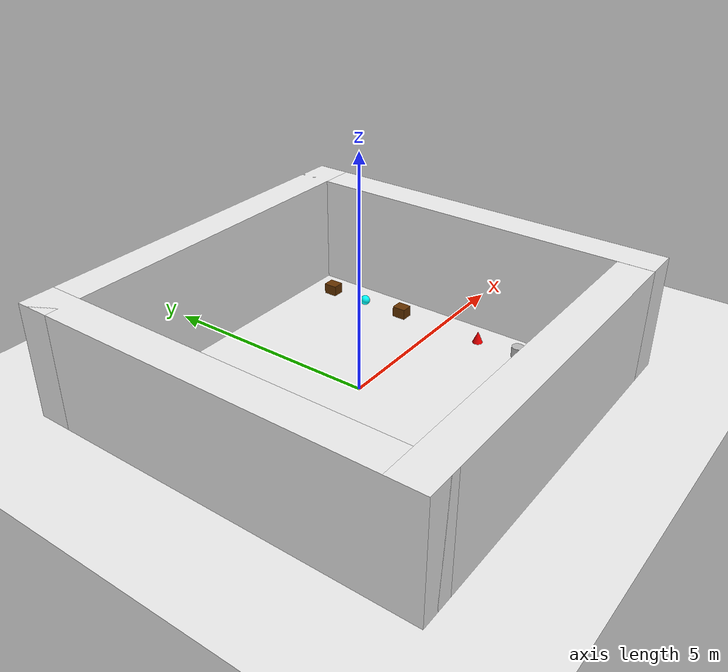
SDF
<sdf version="1.6">
 <world name="default">
  <light name="sun" type="directional">
   <pose>0 0 10 0 -0 0</pose>
   <diffuse>0.8 0.8 0.8 1</diffuse>
   <specular>0.2 0.2 0.2 1</specular>
   <attenuation>
    <range>1000</range>
    <constant>0.9</constant>
    <linear>0.01</linear>
    <quadratic>0.001</quadratic>
   </attenuation>
   <direction>-0.5 0.1 -0.9</direction>
  </light>
  <light name="sun" type="directional">
   <pose>0 0 13 0 -0 0</pose>
   <diffuse>0.8 0.8 0.8 1</diffuse>
   <specular>0.2 0.2 0.2 1</specular>
   <attenuation>
    <range>1000</range>
    <constant>0.9</constant>
    <linear>0.01</linear>
    <quadratic>0.001</quadratic>
   </attenuation>
   <direction>-0.5 0.1 -0.9</direction>
  </light>
  <model name="ground_plane">
   <static>1</static>
   <link name="link">
    <collision name="collision">
     <geometry><plane><normal>0 0 1</normal><size>100 100</size></plane></geometry>
     <surface>
      <contact><collide_bitmask>65535</collide_bitmask></contact>
      <friction><ode><mu>100</mu><mu2>50</mu2></ode></friction>
     </surface>
    </collision>
    <visual name="visual">
     <cast_shadows>0</cast_shadows>
     <geometry><plane><normal>0 0 1</normal><size>100 100</size></plane></geometry>
     <material>
      <script><uri>file://media/materials/scripts/gazebo.material</uri><name>Gazebo/White</name></script>
     </material>
    </visual>
   </link>
  </model>
  <gravity>0 0 -9.8</gravity>
  <magnetic_field>6e-06 2.3e-05 -4.2e-05</magnetic_field>
  <atmosphere type="adiabatic"/>
  <physics name="default_physics" default="0" type="ode">
   <max_step_size>0.001</max_step_size>
   <real_time_factor>1</real_time_factor>
   <real_time_update_rate>1000</real_time_update_rate>
  </physics>
  <scene><ambient>0.4 0.4 0.4 1</ambient><background>0.7 0.7 0.7 1</background><shadows>0</shadows></scene>
  <audio><device>default</device></audio>
  <spherical_coordinates>
   <surface_model>EARTH_WGS84</surface_model>
   <latitude_deg>0</latitude_deg>
   <longitude_deg>0</longitude_deg>
   <elevation>0</elevation>
   <heading_deg>0</heading_deg>
  </spherical_coordinates>
  <model name="m1">
   <link name="Wall_0">
    <collision name="Wall_0_Collision">
     <geometry><box><size>8.76 0.76 2.5</size></box></geometry>
     <pose>0 0 1.25 0 -0 0</pose>
    </collision>
    <visual name="Wall_0_Visual">
     <pose>0 0 1.25 0 -0 0</pose>
     <geometry><box><size>8.76 0.76 2.5</size></box></geometry>
     <material>
      <script><uri>file://media/materials/scripts/gazebo.material</uri><name>Gazebo/White</name></script>
      <ambient>1 1 1 1</ambient>
     </material>
     <meta><layer>0</layer></meta>
    </visual>
    <pose>-4 0 0 0 -0 -1.5708</pose>
   </link>
   <link name="Wall_2">
    <collision name="Wall_2_Collision">
     <geometry><box><size>8.76 0.76 2.5</size></box></geometry>
     <pose>0 0 1.25 0 -0 0</pose>
    </collision>
    <visual name="Wall_2_Visual">
     <pose>0 0 1.25 0 -0 0</pose>
     <geometry><box><size>8.76 0.76 2.5</size></box></geometry>
     <material>
      <script><uri>file://media/materials/scripts/gazebo.material</uri><name>Gazebo/White</name></script>
      <ambient>1 1 1 1</ambient>
     </material>
     <meta><layer>0</layer></meta>
    </visual>
    <pose>0 4 0 0 -0 3.14159</pose>
   </link>
   <link name="Wall_4">
    <collision name="Wall_4_Collision">
     <geometry><box><size>8.76 0.76 2.5</size></box></geometry>
     <pose>0 0 1.25 0 -0 0</pose>
    </collision>
    <visual name="Wall_4_Visual">
     <pose>0 0 1.25 0 -0 0</pose>
     <geometry><box><size>8.76 0.76 2.5</size></box></geometry>
     <material>
      <script><uri>file://media/materials/scripts/gazebo.material</uri><name>Gazebo/White</name></script>
      <ambient>1 1 1 1</ambient>
     </material>
     <meta><layer>0</layer></meta>
    </visual>
    <pose>4 0 0 0 -0 1.5708</pose>
   </link>
   <link name="Wall_6">
    <collision name="Wall_6_Collision">
     <geometry><box><size>7.999 0.76 2.5</size></box></geometry>
     <pose>0 0 1.25 0 -0 0</pose>
    </collision>
    <visual name="Wall_6_Visual">
     <pose>0 0 1.25 0 -0 0</pose>
     <geometry><box><size>7.999 0.76 2.5</size></box></geometry>
     <material>
      <script><uri>file://media/materials/scripts/gazebo.material</uri><name>Gazebo/White</name></script>
      <ambient>1 1 1 1</ambient>
     </material>
     <meta><layer>0</layer></meta>
    </visual>
    <pose>-0.3805 -4 0 0 -0 0</pose>
   </link>
   <static>1</static>
  </model>
  <light name="user_spot_light_0" type="spot">
   <pose>3.43494 3.34931 1 0 -0 0</pose>
   <diffuse>1 1 1 1</diffuse>
   <specular>1 1 1 1</specular>
   <direction>0 0 -1</direction>
   <attenuation>
    <range>20</range>
    <constant>0.01</constant>
    <linear>0.01</linear>
    <quadratic>0.001</quadratic>
   </attenuation>
   <cast_shadows>0</cast_shadows>
   <spot><inner_angle>1</inner_angle><outer_angle>0</outer_angle><falloff>0</falloff></spot>
  </light>
  <light name="user_spot_light_1" type="spot">
   <pose>3.5153 -3.32836 1 0 -0 0</pose>
   <diffuse>1 1 1 1</diffuse>
   <specular>1 1 1 1</specular>
   <direction>0 0 -1</direction>
   <attenuation>
    <range>20</range>
    <constant>0.01</constant>
    <linear>0.01</linear>
    <quadratic>0.001</quadratic>
   </attenuation>
   <cast_shadows>0</cast_shadows>
   <spot><inner_angle>1</inner_angle><outer_angle>0</outer_angle><falloff>0</falloff></spot>
  </light>
  <model name="sphere">
   <link name="link_4">
    <inertial>
     <mass>1</mass>
     <inertia>
      <ixx>0.166667</ixx>
      <ixy>0</ixy>
      <ixz>0</ixz>
      <iyy>0.166667</iyy>
      <iyz>0</iyz>
      <izz>0.166667</izz>
     </inertia>
    </inertial>
    <pose>-4e-06 0 0 0 -0 0</pose>
    <visual name="visual">
     <geometry>
      <mesh><uri>/home/pranavkdas/simulation_ws/src/hexbot/shapes/sphere.stl</uri><scale>1 1 1</scale></mesh>
     </geometry>
     <material>
      <lighting>1</lighting>
      <ambient>0 1 1 1</ambient>
      <diffuse>0 1 1 1</diffuse>
      <specular>0 1 1 1</specular>
      <emissive>0 1 1 1</emissive>
     </material>
    </visual>
    <collision name="collision">
     <geometry>
      <mesh><uri>/home/pranavkdas/simulation_ws/src/hexbot/shapes/sphere.stl</uri><scale>1 1 1</scale></mesh>
     </geometry>
     <surface>
      <friction>
       <ode><mu>1</mu><mu2>1</mu2><fdir1>0 0 0</fdir1><slip1>0</slip1><slip2>0</slip2></ode>
       <torsional>
        <coefficient>1</coefficient>
        <patch_radius>0</patch_radius>
        <surface_radius>0</surface_radius>
        <use_patch_radius>1</use_patch_radius>
        <ode><slip>0</slip></ode>
       </torsional>
      </friction>
      <bounce><restitution_coefficient>0</restitution_coefficient><threshold>1e+06</threshold></bounce>
      <contact>
       <collide_without_contact>0</collide_without_contact>
       <collide_without_contact_bitmask>1</collide_without_contact_bitmask>
       <collide_bitmask>1</collide_bitmask>
       <ode>
        <soft_cfm>0</soft_cfm>
        <soft_erp>0.2</soft_erp>
        <kp>1e+13</kp>
        <kd>1</kd>
        <max_vel>0.01</max_vel>
        <min_depth>0</min_depth>
       </ode>
       <bullet>
        <split_impulse>1</split_impulse>
        <split_impulse_penetration_threshold>-0.01</split_impulse_penetration_threshold>
        <soft_cfm>0</soft_cfm>
        <soft_erp>0.2</soft_erp>
        <kp>1e+13</kp>
        <kd>1</kd>
       </bullet>
      </contact>
     </surface>
    </collision>
   </link>
   <static>0</static>
   <pose>2.94518 1.99411 0.11136 -0.080965 -0.918927 0.0212</pose>
  </model>
  <model name="cuboid">
   <link name="link_1">
    <inertial>
     <mass>1</mass>
     <inertia>
      <ixx>0.166667</ixx>
      <ixy>0</ixy>
      <ixz>0</ixz>
      <iyy>0.166667</iyy>
      <iyz>0</iyz>
      <izz>0.166667</izz>
     </inertia>
    </inertial>
    <pose>4e-06 -3e-06 0 0 -0 0</pose>
    <visual name="visual">
     <geometry>
      <mesh><uri>/home/pranavkdas/simulation_ws/src/hexbot/shapes/cuboid.stl</uri><scale>1 1 1</scale></mesh>
     </geometry>
     <material>
      <lighting>1</lighting>
      <ambient>0.4 0.2 0 1</ambient>
      <diffuse>0.4 0.2 0 1</diffuse>
      <specular>0.4 0.2 0 1</specular>
      <emissive>0.4 0.2 0 1</emissive>
     </material>
    </visual>
    <collision name="collision">
     <geometry>
      <mesh><uri>/home/pranavkdas/simulation_ws/src/hexbot/shapes/cuboid.stl</uri><scale>1 1 1</scale></mesh>
     </geometry>
     <surface>
      <friction>
       <ode><mu>1</mu><mu2>1</mu2><fdir1>0 0 0</fdir1><slip1>0</slip1><slip2>0</slip2></ode>
       <torsional>
        <coefficient>1</coefficient>
        <patch_radius>0</patch_radius>
        <surface_radius>0</surface_radius>
        <use_patch_radius>1</use_patch_radius>
        <ode><slip>0</slip></ode>
       </torsional>
      </friction>
      <bounce><restitution_coefficient>0</restitution_coefficient><threshold>1e+06</threshold></bounce>
      <contact>
       <collide_without_contact>0</collide_without_contact>
       <collide_without_contact_bitmask>1</collide_without_contact_bitmask>
       <collide_bitmask>1</collide_bitmask>
       <ode>
        <soft_cfm>0</soft_cfm>
        <soft_erp>0.2</soft_erp>
        <kp>1e+13</kp>
        <kd>1</kd>
        <max_vel>0.01</max_vel>
        <min_depth>0</min_depth>
       </ode>
       <bullet>
        <split_impulse>1</split_impulse>
        <split_impulse_penetration_threshold>-0.01</split_impulse_penetration_threshold>
        <soft_cfm>0</soft_cfm>
        <soft_erp>0.2</soft_erp>
        <kp>1e+13</kp>
        <kd>1</kd>
       </bullet>
      </contact>
     </surface>
    </collision>
   </link>
   <static>0</static>
   <pose>3.0029 0.993753 0 0 -0 0</pose>
  </model>
  <model name="cylinder">
   <link name="link_0">
    <inertial>
     <mass>1</mass>
     <inertia>
      <ixx>0.166667</ixx>
      <ixy>0</ixy>
      <ixz>0</ixz>
      <iyy>0.166667</iyy>
      <iyz>0</iyz>
      <izz>0.166667</izz>
     </inertia>
    </inertial>
    <pose>-4e-06 0 0 0 -0 0</pose>
    <visual name="visual">
     <geometry>
      <mesh><uri>/home/pranavkdas/simulation_ws/src/hexbot/shapes/cylinder.stl</uri><scale>1 1 1</scale></mesh>
     </geometry>
     <material><lighting>1</lighting><script><uri>__default__</uri><name>__default__</name></script></material>
    </visual>
    <collision name="collision">
     <geometry>
      <mesh><uri>/home/pranavkdas/simulation_ws/src/hexbot/shapes/cylinder.stl</uri><scale>1 1 1</scale></mesh>
     </geometry>
     <surface>
      <friction>
       <ode><mu>1</mu><mu2>1</mu2><fdir1>0 0 0</fdir1><slip1>0</slip1><slip2>0</slip2></ode>
       <torsional>
        <coefficient>1</coefficient>
        <patch_radius>0</patch_radius>
        <surface_radius>0</surface_radius>
        <use_patch_radius>1</use_patch_radius>
        <ode><slip>0</slip></ode>
       </torsional>
      </friction>
      <bounce><restitution_coefficient>0</restitution_coefficient><threshold>1e+06</threshold></bounce>
      <contact>
       <collide_without_contact>0</collide_without_contact>
       <collide_without_contact_bitmask>1</collide_without_contact_bitmask>
       <collide_bitmask>1</collide_bitmask>
       <ode>
        <soft_cfm>0</soft_cfm>
        <soft_erp>0.2</soft_erp>
        <kp>1e+13</kp>
        <kd>1</kd>
        <max_vel>0.01</max_vel>
        <min_depth>0</min_depth>
       </ode>
       <bullet>
        <split_impulse>1</split_impulse>
        <split_impulse_penetration_threshold>-0.01</split_impulse_penetration_threshold>
        <soft_cfm>0</soft_cfm>
        <soft_erp>0.2</soft_erp>
        <kp>1e+13</kp>
        <kd>1</kd>
       </bullet>
      </contact>
     </surface>
    </collision>
   </link>
   <static>0</static>
   <pose>3.01444 -1.99297 -0 0 2e-06 0</pose>
  </model>
  <model name="cone">
   <link name="link_5">
    <inertial>
     <mass>1</mass>
     <inertia>
      <ixx>0.166667</ixx>
      <ixy>0</ixy>
      <ixz>0</ixz>
      <iyy>0.166667</iyy>
      <iyz>0</iyz>
      <izz>0.166667</izz>
     </inertia>
    </inertial>
    <pose>0.065828 0.108469 0 0 -0 0</pose>
    <visual name="visual">
     <geometry>
      <mesh><uri>/home/pranavkdas/simulation_ws/src/hexbot/shapes/cone.stl</uri><scale>1 1 1</scale></mesh>
     </geometry>
     <material>
      <lighting>1</lighting>
      <ambient>1 0 0 1</ambient>
      <diffuse>1 0 0 1</diffuse>
      <specular>1 0 0 1</specular>
      <emissive>1 0 0 1</emissive>
     </material>
    </visual>
    <collision name="collision">
     <geometry>
      <mesh><uri>/home/pranavkdas/simulation_ws/src/hexbot/shapes/cone.stl</uri><scale>1 1 1</scale></mesh>
     </geometry>
     <surface>
      <friction>
       <ode><mu>1</mu><mu2>1</mu2><fdir1>0 0 0</fdir1><slip1>0</slip1><slip2>0</slip2></ode>
       <torsional>
        <coefficient>1</coefficient>
        <patch_radius>0</patch_radius>
        <surface_radius>0</surface_radius>
        <use_patch_radius>1</use_patch_radius>
        <ode><slip>0</slip></ode>
       </torsional>
      </friction>
      <bounce><restitution_coefficient>0</restitution_coefficient><threshold>1e+06</threshold></bounce>
      <contact>
       <collide_without_contact>0</collide_without_contact>
       <collide_without_contact_bitmask>1</collide_without_contact_bitmask>
       <collide_bitmask>1</collide_bitmask>
       <ode>
        <soft_cfm>0</soft_cfm>
        <soft_erp>0.2</soft_erp>
        <kp>1e+13</kp>
        <kd>1</kd>
        <max_vel>0.01</max_vel>
        <min_depth>0</min_depth>
       </ode>
       <bullet>
        <split_impulse>1</split_impulse>
        <split_impulse_penetration_threshold>-0.01</split_impulse_penetration_threshold>
        <soft_cfm>0</soft_cfm>
        <soft_erp>0.2</soft_erp>
        <kp>1e+13</kp>
        <kd>1</kd>
       </bullet>
      </contact>
     </surface>
    </collision>
   </link>
   <model name="cylinder">
    <link name="link_3">
     <inertial>
      <mass>1</mass>
      <inertia>
       <ixx>0.166667</ixx>
       <ixy>0</ixy>
       <ixz>0</ixz>
       <iyy>0.166667</iyy>
       <iyz>0</iyz>
       <izz>0.166667</izz>
      </inertia>
     </inertial>
     <pose>2.96759 1.86836 0 0 -0 0</pose>
     <visual name="visual">
      <geometry>
       <mesh><uri>/home/pranavkdas/simulation_ws/src/hexbot/shapes/cuboid.stl</uri><scale>1 1 1</scale></mesh>
      </geometry>
      <material>
       <lighting>1</lighting>
       <script><uri>file://media/materials/scripts/gazebo.material</uri><name>Gazebo/Grey</name></script>
      </material>
     </visual>
     <collision name="collision">
      <geometry>
       <mesh><uri>/home/pranavkdas/simulation_ws/src/hexbot/shapes/cuboid.stl</uri><scale>1 1 1</scale></mesh>
      </geometry>
      <surface>
       <friction>
        <ode><mu>1</mu><mu2>1</mu2><fdir1>0 0 0</fdir1><slip1>0</slip1><slip2>0</slip2></ode>
        <torsional>
         <coefficient>1</coefficient>
         <patch_radius>0</patch_radius>
         <surface_radius>0</surface_radius>
         <use_patch_radius>1</use_patch_radius>
         <ode><slip>0</slip></ode>
        </torsional>
       </friction>
       <bounce><restitution_coefficient>0</restitution_coefficient><threshold>1e+06</threshold></bounce>
       <contact>
        <collide_without_contact>0</collide_without_contact>
        <collide_without_contact_bitmask>1</collide_without_contact_bitmask>
        <collide_bitmask>1</collide_bitmask>
        <ode>
         <soft_cfm>0</soft_cfm>
         <soft_erp>0.2</soft_erp>
         <kp>1e+13</kp>
         <kd>1</kd>
         <max_vel>0.01</max_vel>
         <min_depth>0</min_depth>
        </ode>
        <bullet>
         <split_impulse>1</split_impulse>
         <split_impulse_penetration_threshold>-0.01</split_impulse_penetration_threshold>
         <soft_cfm>0</soft_cfm>
         <soft_erp>0.2</soft_erp>
         <kp>1e+13</kp>
         <kd>1</kd>
        </bullet>
       </contact>
      </surface>
     </collision>
    </link>
    <static>0</static>
    <pose>-0.022878 0.183736 0 0 -0 0</pose>
   </model>
   <static>0</static>
   <pose>2.95621 -1.12543 0 -1e-06 -0 0</pose>
  </model>
  <model name="cuboid_0">
   <link name="link_1">
    <inertial>
     <mass>1</mass>
     <inertia>
      <ixx>0.166667</ixx>
      <ixy>0</ixy>
      <ixz>0</ixz>
      <iyy>0.166667</iyy>
      <iyz>0</iyz>
      <izz>0.166667</izz>
     </inertia>
    </inertial>
    <pose>4e-06 -3e-06 0 0 -0 0</pose>
    <visual name="visual">
     <geometry>
      <mesh><uri>/home/pranavkdas/simulation_ws/src/hexbot/shapes/cuboid.stl</uri><scale>1 1 1</scale></mesh>
     </geometry>
     <material>
      <lighting>1</lighting>
      <ambient>0.4 0.2 0 1</ambient>
      <diffuse>0.4 0.2 0 1</diffuse>
      <specular>0.4 0.2 0 1</specular>
      <emissive>0.4 0.2 0 1</emissive>
     </material>
    </visual>
    <collision name="collision">
     <geometry>
      <mesh><uri>/home/pranavkdas/simulation_ws/src/hexbot/shapes/cuboid.stl</uri><scale>1 1 1</scale></mesh>
     </geometry>
     <surface>
      <friction>
       <ode><mu>1</mu><mu2>1</mu2><fdir1>0 0 0</fdir1><slip1>0</slip1><slip2>0</slip2></ode>
       <torsional>
        <coefficient>1</coefficient>
        <patch_radius>0</patch_radius>
        <surface_radius>0</surface_radius>
        <use_patch_radius>1</use_patch_radius>
        <ode><slip>0</slip></ode>
       </torsional>
      </friction>
      <bounce><restitution_coefficient>0</restitution_coefficient><threshold>1e+06</threshold></bounce>
      <contact>
       <collide_without_contact>0</collide_without_contact>
       <collide_without_contact_bitmask>1</collide_without_contact_bitmask>
       <collide_bitmask>1</collide_bitmask>
       <ode>
        <soft_cfm>0</soft_cfm>
        <soft_erp>0.2</soft_erp>
        <kp>1e+13</kp>
        <kd>1</kd>
        <max_vel>0.01</max_vel>
        <min_depth>0</min_depth>
       </ode>
       <bullet>
        <split_impulse>1</split_impulse>
        <split_impulse_penetration_threshold>-0.01</split_impulse_penetration_threshold>
        <soft_cfm>0</soft_cfm>
        <soft_erp>0.2</soft_erp>
        <kp>1e+13</kp>
        <kd>1</kd>
       </bullet>
      </contact>
     </surface>
    </collision>
   </link>
   <static>0</static>
   <pose>2.97042 2.96195 0 0 -0 0</pose>
  </model>
  <model name="sphere_0">
   <link name="link_4">
    <inertial>
     <mass>1</mass>
     <inertia>
      <ixx>0.166667</ixx>
      <ixy>0</ixy>
      <ixz>0</ixz>
      <iyy>0.166667</iyy>
      <iyz>0</iyz>
      <izz>0.166667</izz>
     </inertia>
    </inertial>
    <pose>-4e-06 0 0 0 -0 0</pose>
    <visual name="visual">
     <geometry>
      <mesh><uri>/home/pranavkdas/simulation_ws/src/hexbot/shapes/sphere.stl</uri><scale>1 1 1</scale></mesh>
     </geometry>
     <material>
      <lighting>1</lighting>
      <ambient>0 1 1 1</ambient>
      <diffuse>0 1 1 1</diffuse>
      <specular>0 1 1 1</specular>
      <emissive>0 1 1 1</emissive>
     </material>
    </visual>
    <collision name="collision">
     <geometry>
      <mesh><uri>/home/pranavkdas/simulation_ws/src/hexbot/shapes/sphere.stl</uri><scale>1 1 1</scale></mesh>
     </geometry>
     <surface>
      <friction>
       <ode><mu>1</mu><mu2>1</mu2><fdir1>0 0 0</fdir1><slip1>0</slip1><slip2>0</slip2></ode>
       <torsional>
        <coefficient>1</coefficient>
        <patch_radius>0</patch_radius>
        <surface_radius>0</surface_radius>
        <use_patch_radius>1</use_patch_radius>
        <ode><slip>0</slip></ode>
       </torsional>
      </friction>
      <bounce><restitution_coefficient>0</restitution_coefficient><threshold>1e+06</threshold></bounce>
      <contact>
       <collide_without_contact>0</collide_without_contact>
       <collide_without_contact_bitmask>1</collide_without_contact_bitmask>
       <collide_bitmask>1</collide_bitmask>
       <ode>
        <soft_cfm>0</soft_cfm>
        <soft_erp>0.2</soft_erp>
        <kp>1e+13</kp>
        <kd>1</kd>
        <max_vel>0.01</max_vel>
        <min_depth>0</min_depth>
       </ode>
       <bullet>
        <split_impulse>1</split_impulse>
        <split_impulse_penetration_threshold>-0.01</split_impulse_penetration_threshold>
        <soft_cfm>0</soft_cfm>
        <soft_erp>0.2</soft_erp>
        <kp>1e+13</kp>
        <kd>1</kd>
       </bullet>
      </contact>
     </surface>
    </collision>
   </link>
   <static>0</static>
   <pose>2.91433 -3.00118 0.111456 -0.042813 -0.012827 0.00567</pose>
  </model>
 </world>
</sdf>
